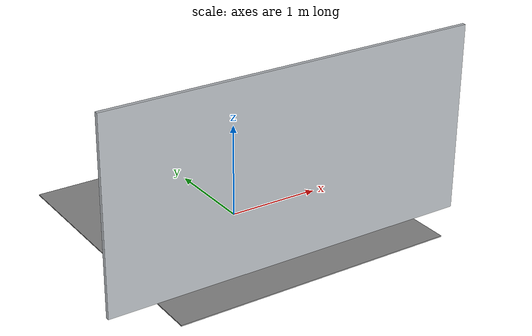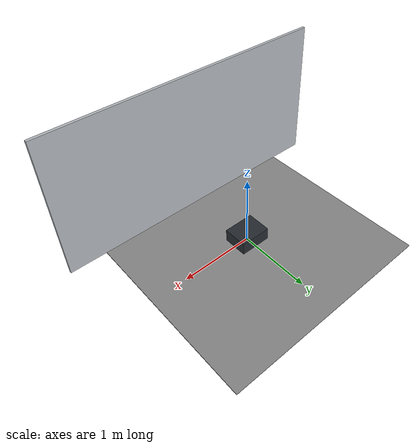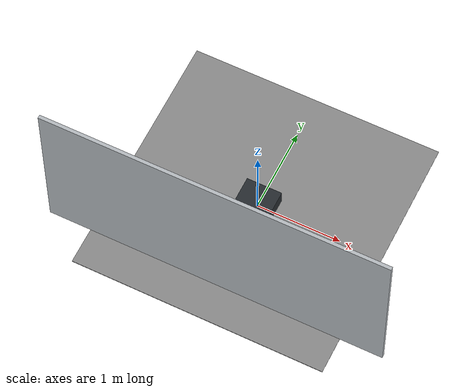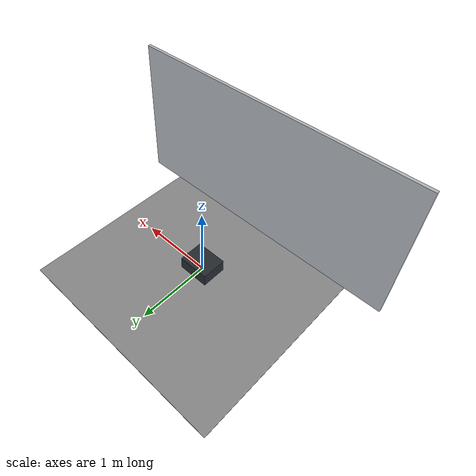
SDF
<?xml version="1.0"?>
<sdf version="1.6">
  <world name="stretch_perception_benchmark">
    <physics name="default_physics" type="ode">
      <max_step_size>0.005</max_step_size>
      <real_time_update_rate>200</real_time_update_rate>
    </physics>

    <light name="sun" type="directional">
      <cast_shadows>true</cast_shadows>
      <pose>0 0 4 0 0 0</pose>
      <diffuse>0.9 0.9 0.9 1</diffuse>
      <specular>0.2 0.2 0.2 1</specular>
      <direction>-0.4 0.2 -0.9</direction>
    </light>

    <model name="stretch3_static_proxy">
      <static>true</static>
      <pose>0 0 0 0 0 0</pose>
      <link name="base_and_mast">
        <visual name="base_visual">
          <visibility_flags>2</visibility_flags>
          <pose>0 0 0.09 0 0 0</pose>
          <geometry><box><size>0.42 0.34 0.18</size></box></geometry>
          <material>
            <ambient>0.15 0.17 0.19 1</ambient>
            <diffuse>0.15 0.17 0.19 1</diffuse>
          </material>
        </visual>
        <collision name="base_collision">
          <pose>0 0 0.09 0 0 0</pose>
          <geometry><box><size>0.42 0.34 0.18</size></box></geometry>
        </collision>
        <collision name="mast_collision">
          <pose>-0.12 0 0.70 0 0 0</pose>
          <geometry><box><size>0.08 0.08 1.15</size></box></geometry>
        </collision>
      </link>
    </model>

    <model name="stretch_perception_depth_camera">
      <static>false</static>
      <pose>0.35 0.25 1.25 0 0 0</pose>
      <link name="gazebo_camera_mount">
        <inertial><mass>1</mass><inertia><ixx>0.01</ixx><iyy>0.01</iyy><izz>0.01</izz></inertia></inertial>
      </link>
      <link name="gazebo_camera_pan_frame">
        <inertial><mass>0.1</mass><inertia><ixx>0.001</ixx><iyy>0.001</iyy><izz>0.001</izz></inertia></inertial>
      </link>
      <link name="gazebo_camera_sensor_frame">
        <inertial><mass>0.1</mass><inertia><ixx>0.001</ixx><iyy>0.001</iyy><izz>0.001</izz></inertia></inertial>
        <sensor type="depth" name="camera">
          <always_on>true</always_on>
          <update_rate>15</update_rate>
          <visualize>false</visualize>
          <camera>
            <visibility_mask>1</visibility_mask>
            <horizontal_fov>1.2112585</horizontal_fov>
            <image>
              <width>640</width>
              <height>480</height>
              <format>R8G8B8</format>
            </image>
            <depth_camera>
            </depth_camera>
            <clip>
              <near>0.05</near>
              <far>3.0</far>
            </clip>
            <noise>
              <type>gaussian</type>
              <mean>0.0</mean>
              <stddev>0.002</stddev>
            </noise>
          </camera>
          <plugin name="stretch_head_depth_camera_controller" filename="libgazebo_ros_camera.so">
            <ros>
              <remapping>camera/image_raw:=camera/color/image_raw</remapping>
              <remapping>camera/camera_info:=camera/color/camera_info</remapping>
              <remapping>camera/depth/image_raw:=camera/depth/image_raw</remapping>
              <remapping>camera/depth/camera_info:=camera/depth/camera_info</remapping>
              <remapping>camera/points:=camera/depth/color/points</remapping>
            </ros>
            <camera_name>camera</camera_name>
            <frame_name>gazebo_camera_depth_optical_frame</frame_name>
            <min_depth>0.05</min_depth>
            <max_depth>3.0</max_depth>
          </plugin>
        </sensor>
      </link>
      <joint name="gazebo_camera_world_joint" type="fixed">
        <parent>world</parent><child>gazebo_camera_mount</child>
      </joint>
      <joint name="gazebo_camera_pan_joint" type="revolute">
        <parent>gazebo_camera_mount</parent><child>gazebo_camera_pan_frame</child>
        <axis><xyz>0 0 1</xyz><limit><lower>-2.8</lower><upper>-1.5</upper></limit><dynamics><damping>0.1</damping></dynamics></axis>
      </joint>
      <joint name="gazebo_camera_tilt_joint" type="revolute">
        <parent>gazebo_camera_pan_frame</parent><child>gazebo_camera_sensor_frame</child>
        <axis><xyz>0 1 0</xyz><limit><lower>0.35</lower><upper>0.9</upper></limit><dynamics><damping>0.1</damping></dynamics></axis>
      </joint>
      <plugin name="camera_joint_commands" filename="libgazebo_ros_joint_pose_trajectory.so">
        <ros><namespace>/camera_scan</namespace></ros>
        <update_rate>30</update_rate>
      </plugin>
      <plugin name="camera_joint_states" filename="libgazebo_ros_joint_state_publisher.so">
        <ros><namespace>/camera_scan</namespace></ros>
        <update_rate>30</update_rate>
        <joint_name>gazebo_camera_pan_joint</joint_name>
        <joint_name>gazebo_camera_tilt_joint</joint_name>
      </plugin>
    </model>

    <model name="floor">
      <static>true</static>
      <pose>0 0 -0.005 0 0 0</pose>
      <link name="link">
        <collision name="collision">
          <geometry>
            <box><size>3.0 3.0 0.01</size></box>
          </geometry>
        </collision>
        <visual name="visual">
          <geometry>
            <box><size>3.0 3.0 0.01</size></box>
          </geometry>
          <material>
            <ambient>0.55 0.55 0.55 1</ambient>
            <diffuse>0.55 0.55 0.55 1</diffuse>
          </material>
        </visual>
      </link>
    </model>

    <!-- A simple rear surface gives the depth camera finite returns behind the
         manipulation volume, so free space is observed rather than inferred. -->
    <model name="perception_backstop">
      <static>true</static>
      <pose>0 -1.05 1.00 0 0 0</pose>
      <link name="link">
        <collision name="collision">
          <geometry><box><size>4.0 0.04 2.0</size></box></geometry>
        </collision>
        <visual name="visual">
          <geometry><box><size>4.0 0.04 2.0</size></box></geometry>
          <material>
            <ambient>0.72 0.74 0.76 1</ambient>
            <diffuse>0.72 0.74 0.76 1</diffuse>
          </material>
        </visual>
      </link>
    </model>

  </world>
</sdf>
